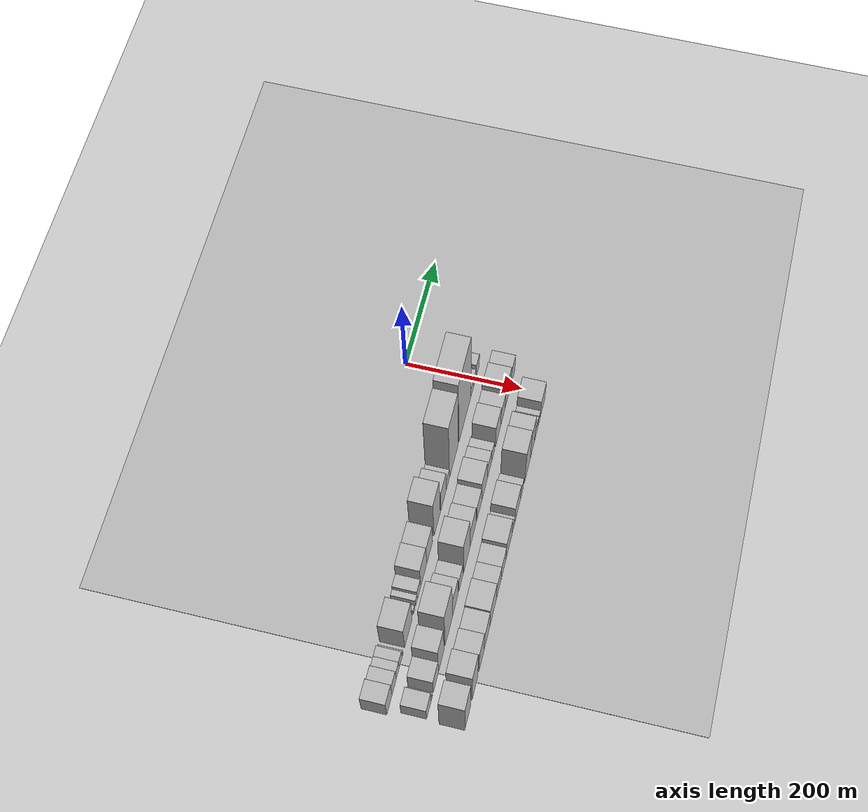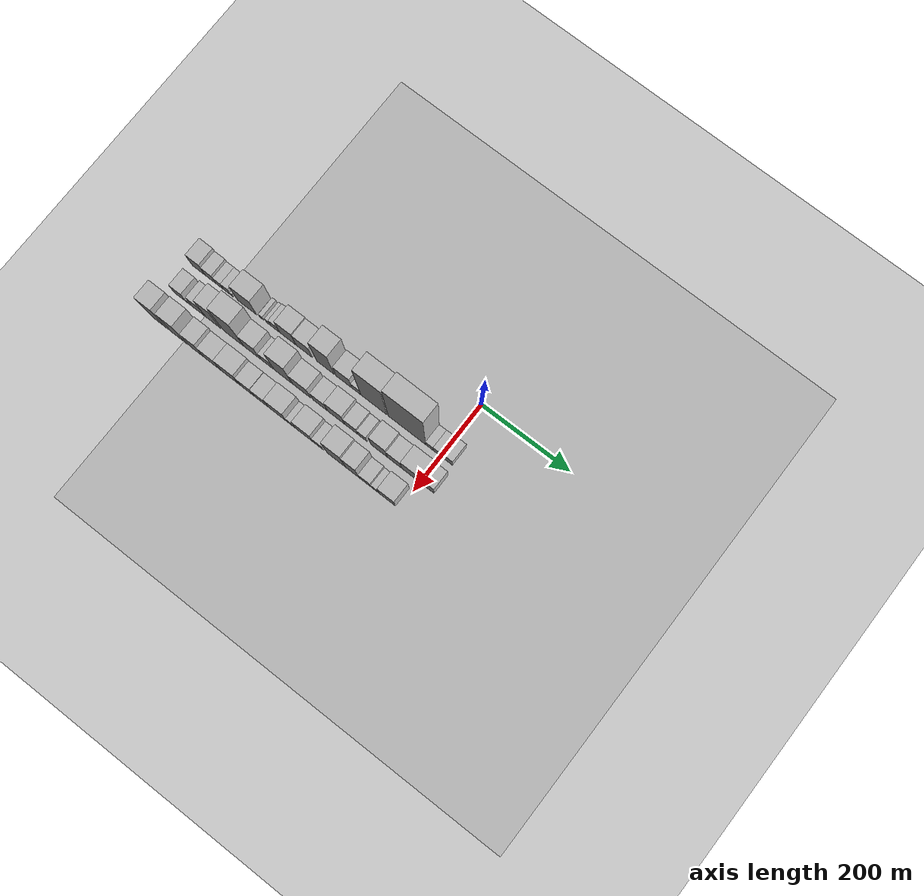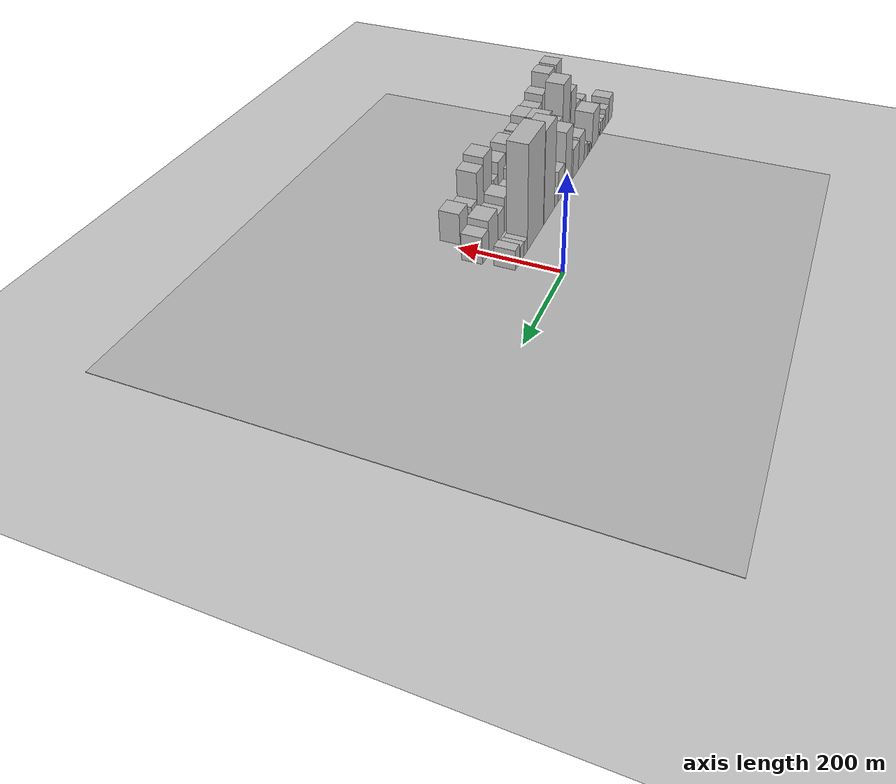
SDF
<sdf version="1.6">
 <world name="default">
  <include><name>ground_plane_1</name><uri>model://HANNAS_ground_plane</uri></include>
  <include>
   <name>ground_plane_2</name>
   <uri>model://HANNAS_ground_plane</uri>
   <pose>100 0 0  0 0 0</pose>
  </include>
  <model name="building_1">
   <static>1</static>
   <pose>100.0000 -564.3469 0 0.000000 0.000000 0.000000</pose>
   <link name="link">
    <pose>0 0 30.00 0 0 0</pose>
    <collision name="collision"><geometry><box><size>40.0000 31.3062 60.0000</size></box></geometry></collision>
    <visual name="visual">
     <cast_shadows>0</cast_shadows>
     <geometry><box><size>40.0000 31.3062 60.0000</size></box></geometry>
     <material>
      <script>
       <uri>model://HANNAS_wall/materials/scripts</uri>
       <uri>model://HANNAS_wall/materials/textures</uri>
       <name>vrc/HANNAS_wall</name>
      </script>
     </material>
    </visual>
   </link>
  </model>
  <model name="building_2">
   <static>1</static>
   <pose>100.0000 -536.2208 0 0.000000 0.000000 0.000000</pose>
   <link name="link">
    <pose>0 0 22.50 0 0 0</pose>
    <collision name="collision"><geometry><box><size>40.0000 24.9461 45.0000</size></box></geometry></collision>
    <visual name="visual">
     <cast_shadows>0</cast_shadows>
     <geometry><box><size>40.0000 24.9461 45.0000</size></box></geometry>
     <material>
      <script>
       <uri>model://HANNAS_wall/materials/scripts</uri>
       <uri>model://HANNAS_wall/materials/textures</uri>
       <name>vrc/HANNAS_wall</name>
      </script>
     </material>
    </visual>
   </link>
  </model>
  <model name="building_3">
   <static>1</static>
   <pose>100.0000 -514.7291 0 0.000000 0.000000 0.000000</pose>
   <link name="link">
    <pose>0 0 16.50 0 0 0</pose>
    <collision name="collision"><geometry><box><size>40.0000 18.0373 33.0000</size></box></geometry></collision>
    <visual name="visual">
     <cast_shadows>0</cast_shadows>
     <geometry><box><size>40.0000 18.0373 33.0000</size></box></geometry>
     <material>
      <script>
       <uri>model://HANNAS_wall/materials/scripts</uri>
       <uri>model://HANNAS_wall/materials/textures</uri>
       <name>vrc/HANNAS_wall</name>
      </script>
     </material>
    </visual>
   </link>
  </model>
  <model name="building_4">
   <static>1</static>
   <pose>100.0000 -497.1526 0 0.000000 0.000000 0.000000</pose>
   <link name="link">
    <pose>0 0 16.50 0 0 0</pose>
    <collision name="collision"><geometry><box><size>40.0000 17.1158 33.0000</size></box></geometry></collision>
    <visual name="visual">
     <cast_shadows>0</cast_shadows>
     <geometry><box><size>40.0000 17.1158 33.0000</size></box></geometry>
     <material>
      <script>
       <uri>model://HANNAS_wall/materials/scripts</uri>
       <uri>model://HANNAS_wall/materials/textures</uri>
       <name>vrc/HANNAS_wall</name>
      </script>
     </material>
    </visual>
   </link>
  </model>
  <model name="building_5">
   <static>1</static>
   <pose>100.0000 -485.1934 0 0.000000 0.000000 0.000000</pose>
   <link name="link">
    <pose>0 0 7.50 0 0 0</pose>
    <collision name="collision"><geometry><box><size>40.0000 6.8025 15.0000</size></box></geometry></collision>
    <visual name="visual">
     <cast_shadows>0</cast_shadows>
     <geometry><box><size>40.0000 6.8025 15.0000</size></box></geometry>
     <material>
      <script>
       <uri>model://HANNAS_wall/materials/scripts</uri>
       <uri>model://HANNAS_wall/materials/textures</uri>
       <name>vrc/HANNAS_wall</name>
      </script>
     </material>
    </visual>
   </link>
  </model>
  <model name="building_6">
   <static>1</static>
   <pose>100.0000 -449.6014 0 0.000000 0.000000 0.000000</pose>
   <link name="link">
    <pose>0 0 42.00 0 0 0</pose>
    <collision name="collision"><geometry><box><size>40.0000 46.3815 84.0000</size></box></geometry></collision>
    <visual name="visual">
     <cast_shadows>0</cast_shadows>
     <geometry><box><size>40.0000 46.3815 84.0000</size></box></geometry>
     <material>
      <script>
       <uri>model://HANNAS_wall/materials/scripts</uri>
       <uri>model://HANNAS_wall/materials/textures</uri>
       <name>vrc/HANNAS_wall</name>
      </script>
     </material>
    </visual>
   </link>
  </model>
  <model name="building_7">
   <static>1</static>
   <pose>100.0000 -414.8630 0 0.000000 0.000000 0.000000</pose>
   <link name="link">
    <pose>0 0 10.50 0 0 0</pose>
    <collision name="collision"><geometry><box><size>40.0000 9.0954 21.0000</size></box></geometry></collision>
    <visual name="visual">
     <cast_shadows>0</cast_shadows>
     <geometry><box><size>40.0000 9.0954 21.0000</size></box></geometry>
     <material>
      <script>
       <uri>model://HANNAS_wall/materials/scripts</uri>
       <uri>model://HANNAS_wall/materials/textures</uri>
       <name>vrc/HANNAS_wall</name>
      </script>
     </material>
    </visual>
   </link>
  </model>
  <model name="building_8">
   <static>1</static>
   <pose>100.0000 -399.0628 0 0.000000 0.000000 0.000000</pose>
   <link name="link">
    <pose>0 0 12.00 0 0 0</pose>
    <collision name="collision"><geometry><box><size>40.0000 10.5049 24.0000</size></box></geometry></collision>
    <visual name="visual">
     <cast_shadows>0</cast_shadows>
     <geometry><box><size>40.0000 10.5049 24.0000</size></box></geometry>
     <material>
      <script>
       <uri>model://HANNAS_wall/materials/scripts</uri>
       <uri>model://HANNAS_wall/materials/textures</uri>
       <name>vrc/HANNAS_wall</name>
      </script>
     </material>
    </visual>
   </link>
  </model>
  <model name="building_9">
   <static>1</static>
   <pose>100.0000 -383.0492 0 0.000000 0.000000 0.000000</pose>
   <link name="link">
    <pose>0 0 18.00 0 0 0</pose>
    <collision name="collision"><geometry><box><size>40.0000 21.5223 36.0000</size></box></geometry></collision>
    <visual name="visual">
     <cast_shadows>0</cast_shadows>
     <geometry><box><size>40.0000 21.5223 36.0000</size></box></geometry>
     <material>
      <script>
       <uri>model://HANNAS_wall/materials/scripts</uri>
       <uri>model://HANNAS_wall/materials/textures</uri>
       <name>vrc/HANNAS_wall</name>
      </script>
     </material>
    </visual>
   </link>
  </model>
  <model name="building_10">
   <static>1</static>
   <pose>100.0000 -352.9739 0 0.000000 0.000000 0.000000</pose>
   <link name="link">
    <pose>0 0 37.50 0 0 0</pose>
    <collision name="collision"><geometry><box><size>40.0000 38.6283 75.0000</size></box></geometry></collision>
    <visual name="visual">
     <cast_shadows>0</cast_shadows>
     <geometry><box><size>40.0000 38.6283 75.0000</size></box></geometry>
     <material>
      <script>
       <uri>model://HANNAS_wall/materials/scripts</uri>
       <uri>model://HANNAS_wall/materials/textures</uri>
       <name>vrc/HANNAS_wall</name>
      </script>
     </material>
    </visual>
   </link>
  </model>
  <model name="building_11">
   <static>1</static>
   <pose>100.0000 -314.8641 0 0.000000 0.000000 0.000000</pose>
   <link name="link">
    <pose>0 0 34.50 0 0 0</pose>
    <collision name="collision"><geometry><box><size>40.0000 37.5913 69.0000</size></box></geometry></collision>
    <visual name="visual">
     <cast_shadows>0</cast_shadows>
     <geometry><box><size>40.0000 37.5913 69.0000</size></box></geometry>
     <material>
      <script>
       <uri>model://HANNAS_wall/materials/scripts</uri>
       <uri>model://HANNAS_wall/materials/textures</uri>
       <name>vrc/HANNAS_wall</name>
      </script>
     </material>
    </visual>
   </link>
  </model>
  <model name="building_12">
   <static>1</static>
   <pose>100.0000 -265.6356 0 0.000000 0.000000 0.000000</pose>
   <link name="link">
    <pose>0 0 66.00 0 0 0</pose>
    <collision name="collision"><geometry><box><size>40.0000 40.8657 132.0000</size></box></geometry></collision>
    <visual name="visual">
     <cast_shadows>0</cast_shadows>
     <geometry><box><size>40.0000 40.8657 132.0000</size></box></geometry>
     <material>
      <script>
       <uri>model://HANNAS_wall/materials/scripts</uri>
       <uri>model://HANNAS_wall/materials/textures</uri>
       <name>vrc/HANNAS_wall</name>
      </script>
     </material>
    </visual>
   </link>
  </model>
  <model name="building_13">
   <static>1</static>
   <pose>100.0000 -222.7136 0 0.000000 0.000000 0.000000</pose>
   <link name="link">
    <pose>0 0 34.50 0 0 0</pose>
    <collision name="collision"><geometry><box><size>40.0000 36.9784 69.0000</size></box></geometry></collision>
    <visual name="visual">
     <cast_shadows>0</cast_shadows>
     <geometry><box><size>40.0000 36.9784 69.0000</size></box></geometry>
     <material>
      <script>
       <uri>model://HANNAS_wall/materials/scripts</uri>
       <uri>model://HANNAS_wall/materials/textures</uri>
       <name>vrc/HANNAS_wall</name>
      </script>
     </material>
    </visual>
   </link>
  </model>
  <model name="building_14">
   <static>1</static>
   <pose>100.0000 -193.8924 0 0.000000 0.000000 0.000000</pose>
   <link name="link">
    <pose>0 0 18.00 0 0 0</pose>
    <collision name="collision"><geometry><box><size>40.0000 20.6640 36.0000</size></box></geometry></collision>
    <visual name="visual">
     <cast_shadows>0</cast_shadows>
     <geometry><box><size>40.0000 20.6640 36.0000</size></box></geometry>
     <material>
      <script>
       <uri>model://HANNAS_wall/materials/scripts</uri>
       <uri>model://HANNAS_wall/materials/textures</uri>
       <name>vrc/HANNAS_wall</name>
      </script>
     </material>
    </visual>
   </link>
  </model>
  <model name="building_15">
   <static>1</static>
   <pose>100.0000 -153.4347 0 0.000000 0.000000 0.000000</pose>
   <link name="link">
    <pose>0 0 99.00 0 0 0</pose>
    <collision name="collision"><geometry><box><size>40.0000 60.2513 198.0000</size></box></geometry></collision>
    <visual name="visual">
     <cast_shadows>0</cast_shadows>
     <geometry><box><size>40.0000 60.2513 198.0000</size></box></geometry>
     <material>
      <script>
       <uri>model://HANNAS_wall/materials/scripts</uri>
       <uri>model://HANNAS_wall/materials/textures</uri>
       <name>vrc/HANNAS_wall</name>
      </script>
     </material>
    </visual>
   </link>
  </model>
  <model name="building_16">
   <static>1</static>
   <pose>100.0000 -77.7724 0 0.000000 0.000000 0.000000</pose>
   <link name="link">
    <pose>0 0 109.50 0 0 0</pose>
    <collision name="collision"><geometry><box><size>40.0000 85.0735 219.0000</size></box></geometry></collision>
    <visual name="visual">
     <cast_shadows>0</cast_shadows>
     <geometry><box><size>40.0000 85.0735 219.0000</size></box></geometry>
     <material>
      <script>
       <uri>model://HANNAS_wall/materials/scripts</uri>
       <uri>model://HANNAS_wall/materials/textures</uri>
       <name>vrc/HANNAS_wall</name>
      </script>
     </material>
    </visual>
   </link>
  </model>
  <model name="building_17">
   <static>1</static>
   <pose>100.0000 -26.6533 0 0.000000 0.000000 0.000000</pose>
   <link name="link">
    <pose>0 0 15.00 0 0 0</pose>
    <collision name="collision"><geometry><box><size>40.0000 17.1646 30.0000</size></box></geometry></collision>
    <visual name="visual">
     <cast_shadows>0</cast_shadows>
     <geometry><box><size>40.0000 17.1646 30.0000</size></box></geometry>
     <material>
      <script>
       <uri>model://HANNAS_wall/materials/scripts</uri>
       <uri>model://HANNAS_wall/materials/textures</uri>
       <name>vrc/HANNAS_wall</name>
      </script>
     </material>
    </visual>
   </link>
  </model>
  <model name="building_18">
   <static>1</static>
   <pose>100.0000 -8.3352 0 0.000000 0.000000 0.000000</pose>
   <link name="link">
    <pose>0 0 16.50 0 0 0</pose>
    <collision name="collision"><geometry><box><size>40.0000 19.4717 33.0000</size></box></geometry></collision>
    <visual name="visual">
     <cast_shadows>0</cast_shadows>
     <geometry><box><size>40.0000 19.4717 33.0000</size></box></geometry>
     <material>
      <script>
       <uri>model://HANNAS_wall/materials/scripts</uri>
       <uri>model://HANNAS_wall/materials/textures</uri>
       <name>vrc/HANNAS_wall</name>
      </script>
     </material>
    </visual>
   </link>
  </model>
  <model name="building_19">
   <static>1</static>
   <pose>100.0000 15.1013 0 0.000000 0.000000 0.000000</pose>
   <link name="link">
    <pose>0 0 21.00 0 0 0</pose>
    <collision name="collision"><geometry><box><size>40.0000 21.4013 42.0000</size></box></geometry></collision>
    <visual name="visual">
     <cast_shadows>0</cast_shadows>
     <geometry><box><size>40.0000 21.4013 42.0000</size></box></geometry>
     <material>
      <script>
       <uri>model://HANNAS_wall/materials/scripts</uri>
       <uri>model://HANNAS_wall/materials/textures</uri>
       <name>vrc/HANNAS_wall</name>
      </script>
     </material>
    </visual>
   </link>
  </model>
  <model name="building_41">
   <static>1</static>
   <pose>160.0000 -557.8670 0 0.000000 0.000000 0.000000</pose>
   <link name="link">
    <pose>0 0 24.00 0 0 0</pose>
    <collision name="collision"><geometry><box><size>40.0000 28.2659 48.0000</size></box></geometry></collision>
    <visual name="visual">
     <cast_shadows>0</cast_shadows>
     <geometry><box><size>40.0000 28.2659 48.0000</size></box></geometry>
     <material>
      <script>
       <uri>model://HANNAS_wall/materials/scripts</uri>
       <uri>model://HANNAS_wall/materials/textures</uri>
       <name>vrc/HANNAS_wall</name>
      </script>
     </material>
    </visual>
   </link>
  </model>
  <model name="building_42">
   <static>1</static>
   <pose>160.0000 -539.5382 0 0.000000 0.000000 0.000000</pose>
   <link name="link">
    <pose>0 0 9.00 0 0 0</pose>
    <collision name="collision"><geometry><box><size>40.0000 8.3918 18.0000</size></box></geometry></collision>
    <visual name="visual">
     <cast_shadows>0</cast_shadows>
     <geometry><box><size>40.0000 8.3918 18.0000</size></box></geometry>
     <material>
      <script>
       <uri>model://HANNAS_wall/materials/scripts</uri>
       <uri>model://HANNAS_wall/materials/textures</uri>
       <name>vrc/HANNAS_wall</name>
      </script>
     </material>
    </visual>
   </link>
  </model>
  <model name="building_43">
   <static>1</static>
   <pose>160.0000 -514.0114 0 0.000000 0.000000 0.000000</pose>
   <link name="link">
    <pose>0 0 28.50 0 0 0</pose>
    <collision name="collision"><geometry><box><size>40.0000 32.6617 57.0000</size></box></geometry></collision>
    <visual name="visual">
     <cast_shadows>0</cast_shadows>
     <geometry><box><size>40.0000 32.6617 57.0000</size></box></geometry>
     <material>
      <script>
       <uri>model://HANNAS_wall/materials/scripts</uri>
       <uri>model://HANNAS_wall/materials/textures</uri>
       <name>vrc/HANNAS_wall</name>
      </script>
     </material>
    </visual>
   </link>
  </model>
  <model name="building_44">
   <static>1</static>
   <pose>160.0000 -479.9670 0 0.000000 0.000000 0.000000</pose>
   <link name="link">
    <pose>0 0 52.50 0 0 0</pose>
    <collision name="collision"><geometry><box><size>40.0000 35.4271 105.0000</size></box></geometry></collision>
    <visual name="visual">
     <cast_shadows>0</cast_shadows>
     <geometry><box><size>40.0000 35.4271 105.0000</size></box></geometry>
     <material>
      <script>
       <uri>model://HANNAS_wall/materials/scripts</uri>
       <uri>model://HANNAS_wall/materials/textures</uri>
       <name>vrc/HANNAS_wall</name>
      </script>
     </material>
    </visual>
   </link>
  </model>
  <model name="building_45">
   <static>1</static>
   <pose>160.0000 -431.1962 0 0.000000 0.000000 0.000000</pose>
   <link name="link">
    <pose>0 0 73.50 0 0 0</pose>
    <collision name="collision"><geometry><box><size>40.0000 48.1146 147.0000</size></box></geometry></collision>
    <visual name="visual">
     <cast_shadows>0</cast_shadows>
     <geometry><box><size>40.0000 48.1146 147.0000</size></box></geometry>
     <material>
      <script>
       <uri>model://HANNAS_wall/materials/scripts</uri>
       <uri>model://HANNAS_wall/materials/textures</uri>
       <name>vrc/HANNAS_wall</name>
      </script>
     </material>
    </visual>
   </link>
  </model>
  <model name="building_46">
   <static>1</static>
   <pose>160.0000 -388.1790 0 0.000000 0.000000 0.000000</pose>
   <link name="link">
    <pose>0 0 37.50 0 0 0</pose>
    <collision name="collision"><geometry><box><size>40.0000 37.9197 75.0000</size></box></geometry></collision>
    <visual name="visual">
     <cast_shadows>0</cast_shadows>
     <geometry><box><size>40.0000 37.9197 75.0000</size></box></geometry>
     <material>
      <script>
       <uri>model://HANNAS_wall/materials/scripts</uri>
       <uri>model://HANNAS_wall/materials/textures</uri>
       <name>vrc/HANNAS_wall</name>
      </script>
     </material>
    </visual>
   </link>
  </model>
  <model name="building_47">
   <static>1</static>
   <pose>160.0000 -352.4566 0 0.000000 0.000000 0.000000</pose>
   <link name="link">
    <pose>0 0 24.00 0 0 0</pose>
    <collision name="collision"><geometry><box><size>40.0000 27.5251 48.0000</size></box></geometry></collision>
    <visual name="visual">
     <cast_shadows>0</cast_shadows>
     <geometry><box><size>40.0000 27.5251 48.0000</size></box></geometry>
     <material>
      <script>
       <uri>model://HANNAS_wall/materials/scripts</uri>
       <uri>model://HANNAS_wall/materials/textures</uri>
       <name>vrc/HANNAS_wall</name>
      </script>
     </material>
    </visual>
   </link>
  </model>
  <model name="building_48">
   <static>1</static>
   <pose>160.0000 -314.3407 0 0.000000 0.000000 0.000000</pose>
   <link name="link">
    <pose>0 0 61.50 0 0 0</pose>
    <collision name="collision"><geometry><box><size>40.0000 42.7068 123.0000</size></box></geometry></collision>
    <visual name="visual">
     <cast_shadows>0</cast_shadows>
     <geometry><box><size>40.0000 42.7068 123.0000</size></box></geometry>
     <material>
      <script>
       <uri>model://HANNAS_wall/materials/scripts</uri>
       <uri>model://HANNAS_wall/materials/textures</uri>
       <name>vrc/HANNAS_wall</name>
      </script>
     </material>
    </visual>
   </link>
  </model>
  <model name="building_49">
   <static>1</static>
   <pose>160.0000 -271.8601 0 0.000000 0.000000 0.000000</pose>
   <link name="link">
    <pose>0 0 36.00 0 0 0</pose>
    <collision name="collision"><geometry><box><size>40.0000 42.2543 72.0000</size></box></geometry></collision>
    <visual name="visual">
     <cast_shadows>0</cast_shadows>
     <geometry><box><size>40.0000 42.2543 72.0000</size></box></geometry>
     <material>
      <script>
       <uri>model://HANNAS_wall/materials/scripts</uri>
       <uri>model://HANNAS_wall/materials/textures</uri>
       <name>vrc/HANNAS_wall</name>
      </script>
     </material>
    </visual>
   </link>
  </model>
  <model name="building_50">
   <static>1</static>
   <pose>160.0000 -228.7493 0 0.000000 0.000000 0.000000</pose>
   <link name="link">
    <pose>0 0 28.50 0 0 0</pose>
    <collision name="collision"><geometry><box><size>40.0000 33.9673 57.0000</size></box></geometry></collision>
    <visual name="visual">
     <cast_shadows>0</cast_shadows>
     <geometry><box><size>40.0000 33.9673 57.0000</size></box></geometry>
     <material>
      <script>
       <uri>model://HANNAS_wall/materials/scripts</uri>
       <uri>model://HANNAS_wall/materials/textures</uri>
       <name>vrc/HANNAS_wall</name>
      </script>
     </material>
    </visual>
   </link>
  </model>
  <model name="building_51">
   <static>1</static>
   <pose>160.0000 -191.9528 0 0.000000 0.000000 0.000000</pose>
   <link name="link">
    <pose>0 0 37.50 0 0 0</pose>
    <collision name="collision"><geometry><box><size>40.0000 39.6259 75.0000</size></box></geometry></collision>
    <visual name="visual">
     <cast_shadows>0</cast_shadows>
     <geometry><box><size>40.0000 39.6259 75.0000</size></box></geometry>
     <material>
      <script>
       <uri>model://HANNAS_wall/materials/scripts</uri>
       <uri>model://HANNAS_wall/materials/textures</uri>
       <name>vrc/HANNAS_wall</name>
      </script>
     </material>
    </visual>
   </link>
  </model>
  <model name="building_52">
   <static>1</static>
   <pose>160.0000 -157.3839 0 0.000000 0.000000 0.000000</pose>
   <link name="link">
    <pose>0 0 25.50 0 0 0</pose>
    <collision name="collision"><geometry><box><size>40.0000 29.5119 51.0000</size></box></geometry></collision>
    <visual name="visual">
     <cast_shadows>0</cast_shadows>
     <geometry><box><size>40.0000 29.5119 51.0000</size></box></geometry>
     <material>
      <script>
       <uri>model://HANNAS_wall/materials/scripts</uri>
       <uri>model://HANNAS_wall/materials/textures</uri>
       <name>vrc/HANNAS_wall</name>
      </script>
     </material>
    </visual>
   </link>
  </model>
  <model name="building_53">
   <static>1</static>
   <pose>160.0000 -132.2535 0 0.000000 0.000000 0.000000</pose>
   <link name="link">
    <pose>0 0 19.50 0 0 0</pose>
    <collision name="collision"><geometry><box><size>40.0000 20.7489 39.0000</size></box></geometry></collision>
    <visual name="visual">
     <cast_shadows>0</cast_shadows>
     <geometry><box><size>40.0000 20.7489 39.0000</size></box></geometry>
     <material>
      <script>
       <uri>model://HANNAS_wall/materials/scripts</uri>
       <uri>model://HANNAS_wall/materials/textures</uri>
       <name>vrc/HANNAS_wall</name>
      </script>
     </material>
    </visual>
   </link>
  </model>
  <model name="building_54">
   <static>1</static>
   <pose>160.0000 -94.1200 0 0.000000 0.000000 0.000000</pose>
   <link name="link">
    <pose>0 0 37.50 0 0 0</pose>
    <collision name="collision"><geometry><box><size>40.0000 37.5179 75.0000</size></box></geometry></collision>
    <visual name="visual">
     <cast_shadows>0</cast_shadows>
     <geometry><box><size>40.0000 37.5179 75.0000</size></box></geometry>
     <material>
      <script>
       <uri>model://HANNAS_wall/materials/scripts</uri>
       <uri>model://HANNAS_wall/materials/textures</uri>
       <name>vrc/HANNAS_wall</name>
      </script>
     </material>
    </visual>
   </link>
  </model>
  <model name="building_55">
   <static>1</static>
   <pose>160.0000 -59.0901 0 0.000000 0.000000 0.000000</pose>
   <link name="link">
    <pose>0 0 28.50 0 0 0</pose>
    <collision name="collision"><geometry><box><size>40.0000 32.5419 57.0000</size></box></geometry></collision>
    <visual name="visual">
     <cast_shadows>0</cast_shadows>
     <geometry><box><size>40.0000 32.5419 57.0000</size></box></geometry>
     <material>
      <script>
       <uri>model://HANNAS_wall/materials/scripts</uri>
       <uri>model://HANNAS_wall/materials/textures</uri>
       <name>vrc/HANNAS_wall</name>
      </script>
     </material>
    </visual>
   </link>
  </model>
  <model name="building_56">
   <static>1</static>
   <pose>160.0000 -21.2460 0 0.000000 0.000000 0.000000</pose>
   <link name="link">
    <pose>0 0 36.00 0 0 0</pose>
    <collision name="collision"><geometry><box><size>40.0000 43.1464 72.0000</size></box></geometry></collision>
    <visual name="visual">
     <cast_shadows>0</cast_shadows>
     <geometry><box><size>40.0000 43.1464 72.0000</size></box></geometry>
     <material>
      <script>
       <uri>model://HANNAS_wall/materials/scripts</uri>
       <uri>model://HANNAS_wall/materials/textures</uri>
       <name>vrc/HANNAS_wall</name>
      </script>
     </material>
    </visual>
   </link>
  </model>
  <model name="building_57">
   <static>1</static>
   <pose>160.0000 15.5458 0 0.000000 0.000000 0.000000</pose>
   <link name="link">
    <pose>0 0 28.50 0 0 0</pose>
    <collision name="collision"><geometry><box><size>40.0000 30.4371 57.0000</size></box></geometry></collision>
    <visual name="visual">
     <cast_shadows>0</cast_shadows>
     <geometry><box><size>40.0000 30.4371 57.0000</size></box></geometry>
     <material>
      <script>
       <uri>model://HANNAS_wall/materials/scripts</uri>
       <uri>model://HANNAS_wall/materials/textures</uri>
       <name>vrc/HANNAS_wall</name>
      </script>
     </material>
    </visual>
   </link>
  </model>
  <model name="building_72">
   <static>1</static>
   <pose>220.0000 -556.3811 0 0.000000 0.000000 0.000000</pose>
   <link name="link">
    <pose>0 0 61.50 0 0 0</pose>
    <collision name="collision"><geometry><box><size>40.0000 37.2379 123.0000</size></box></geometry></collision>
    <visual name="visual">
     <cast_shadows>0</cast_shadows>
     <geometry><box><size>40.0000 37.2379 123.0000</size></box></geometry>
     <material>
      <script>
       <uri>model://HANNAS_wall/materials/scripts</uri>
       <uri>model://HANNAS_wall/materials/textures</uri>
       <name>vrc/HANNAS_wall</name>
      </script>
     </material>
    </visual>
   </link>
  </model>
  <model name="building_73">
   <static>1</static>
   <pose>220.0000 -509.0578 0 0.000000 0.000000 0.000000</pose>
   <link name="link">
    <pose>0 0 61.50 0 0 0</pose>
    <collision name="collision"><geometry><box><size>40.0000 37.4086 123.0000</size></box></geometry></collision>
    <visual name="visual">
     <cast_shadows>0</cast_shadows>
     <geometry><box><size>40.0000 37.4086 123.0000</size></box></geometry>
     <material>
      <script>
       <uri>model://HANNAS_wall/materials/scripts</uri>
       <uri>model://HANNAS_wall/materials/textures</uri>
       <name>vrc/HANNAS_wall</name>
      </script>
     </material>
    </visual>
   </link>
  </model>
  <model name="building_74">
   <static>1</static>
   <pose>220.0000 -465.8394 0 0.000000 0.000000 0.000000</pose>
   <link name="link">
    <pose>0 0 46.50 0 0 0</pose>
    <collision name="collision"><geometry><box><size>40.0000 33.0282 93.0000</size></box></geometry></collision>
    <visual name="visual">
     <cast_shadows>0</cast_shadows>
     <geometry><box><size>40.0000 33.0282 93.0000</size></box></geometry>
     <material>
      <script>
       <uri>model://HANNAS_wall/materials/scripts</uri>
       <uri>model://HANNAS_wall/materials/textures</uri>
       <name>vrc/HANNAS_wall</name>
      </script>
     </material>
    </visual>
   </link>
  </model>
  <model name="building_75">
   <static>1</static>
   <pose>220.0000 -429.7890 0 0.000000 0.000000 0.000000</pose>
   <link name="link">
    <pose>0 0 37.50 0 0 0</pose>
    <collision name="collision"><geometry><box><size>40.0000 39.0726 75.0000</size></box></geometry></collision>
    <visual name="visual">
     <cast_shadows>0</cast_shadows>
     <geometry><box><size>40.0000 39.0726 75.0000</size></box></geometry>
     <material>
      <script>
       <uri>model://HANNAS_wall/materials/scripts</uri>
       <uri>model://HANNAS_wall/materials/textures</uri>
       <name>vrc/HANNAS_wall</name>
      </script>
     </material>
    </visual>
   </link>
  </model>
  <model name="building_76">
   <static>1</static>
   <pose>220.0000 -387.8769 0 0.000000 0.000000 0.000000</pose>
   <link name="link">
    <pose>0 0 40.50 0 0 0</pose>
    <collision name="collision"><geometry><box><size>40.0000 44.7518 81.0000</size></box></geometry></collision>
    <visual name="visual">
     <cast_shadows>0</cast_shadows>
     <geometry><box><size>40.0000 44.7518 81.0000</size></box></geometry>
     <material>
      <script>
       <uri>model://HANNAS_wall/materials/scripts</uri>
       <uri>model://HANNAS_wall/materials/textures</uri>
       <name>vrc/HANNAS_wall</name>
      </script>
     </material>
    </visual>
   </link>
  </model>
  <model name="building_77">
   <static>1</static>
   <pose>220.0000 -348.8510 0 0.000000 0.000000 0.000000</pose>
   <link name="link">
    <pose>0 0 31.50 0 0 0</pose>
    <collision name="collision"><geometry><box><size>40.0000 33.2999 63.0000</size></box></geometry></collision>
    <visual name="visual">
     <cast_shadows>0</cast_shadows>
     <geometry><box><size>40.0000 33.2999 63.0000</size></box></geometry>
     <material>
      <script>
       <uri>model://HANNAS_wall/materials/scripts</uri>
       <uri>model://HANNAS_wall/materials/textures</uri>
       <name>vrc/HANNAS_wall</name>
      </script>
     </material>
    </visual>
   </link>
  </model>
  <model name="building_78">
   <static>1</static>
   <pose>220.0000 -315.4306 0 0.000000 0.000000 0.000000</pose>
   <link name="link">
    <pose>0 0 30.00 0 0 0</pose>
    <collision name="collision"><geometry><box><size>40.0000 33.5409 60.0000</size></box></geometry></collision>
    <visual name="visual">
     <cast_shadows>0</cast_shadows>
     <geometry><box><size>40.0000 33.5409 60.0000</size></box></geometry>
     <material>
      <script>
       <uri>model://HANNAS_wall/materials/scripts</uri>
       <uri>model://HANNAS_wall/materials/textures</uri>
       <name>vrc/HANNAS_wall</name>
      </script>
     </material>
    </visual>
   </link>
  </model>
  <model name="building_79">
   <static>1</static>
   <pose>220.0000 -277.4956 0 0.000000 0.000000 0.000000</pose>
   <link name="link">
    <pose>0 0 37.50 0 0 0</pose>
    <collision name="collision"><geometry><box><size>40.0000 42.3291 75.0000</size></box></geometry></collision>
    <visual name="visual">
     <cast_shadows>0</cast_shadows>
     <geometry><box><size>40.0000 42.3291 75.0000</size></box></geometry>
     <material>
      <script>
       <uri>model://HANNAS_wall/materials/scripts</uri>
       <uri>model://HANNAS_wall/materials/textures</uri>
       <name>vrc/HANNAS_wall</name>
      </script>
     </material>
    </visual>
   </link>
  </model>
  <model name="building_80">
   <static>1</static>
   <pose>220.0000 -246.5379 0 0.000000 0.000000 0.000000</pose>
   <link name="link">
    <pose>0 0 18.00 0 0 0</pose>
    <collision name="collision"><geometry><box><size>40.0000 19.5864 36.0000</size></box></geometry></collision>
    <visual name="visual">
     <cast_shadows>0</cast_shadows>
     <geometry><box><size>40.0000 19.5864 36.0000</size></box></geometry>
     <material>
      <script>
       <uri>model://HANNAS_wall/materials/scripts</uri>
       <uri>model://HANNAS_wall/materials/textures</uri>
       <name>vrc/HANNAS_wall</name>
      </script>
     </material>
    </visual>
   </link>
  </model>
  <model name="building_81">
   <static>1</static>
   <pose>220.0000 -216.2953 0 0.000000 0.000000 0.000000</pose>
   <link name="link">
    <pose>0 0 34.50 0 0 0</pose>
    <collision name="collision"><geometry><box><size>40.0000 40.8987 69.0000</size></box></geometry></collision>
    <visual name="visual">
     <cast_shadows>0</cast_shadows>
     <geometry><box><size>40.0000 40.8987 69.0000</size></box></geometry>
     <material>
      <script>
       <uri>model://HANNAS_wall/materials/scripts</uri>
       <uri>model://HANNAS_wall/materials/textures</uri>
       <name>vrc/HANNAS_wall</name>
      </script>
     </material>
    </visual>
   </link>
  </model>
  <model name="building_82">
   <static>1</static>
   <pose>220.0000 -184.4032 0 0.000000 0.000000 0.000000</pose>
   <link name="link">
    <pose>0 0 21.00 0 0 0</pose>
    <collision name="collision"><geometry><box><size>40.0000 22.8855 42.0000</size></box></geometry></collision>
    <visual name="visual">
     <cast_shadows>0</cast_shadows>
     <geometry><box><size>40.0000 22.8855 42.0000</size></box></geometry>
     <material>
      <script>
       <uri>model://HANNAS_wall/materials/scripts</uri>
       <uri>model://HANNAS_wall/materials/textures</uri>
       <name>vrc/HANNAS_wall</name>
      </script>
     </material>
    </visual>
   </link>
  </model>
  <model name="building_83">
   <static>1</static>
   <pose>220.0000 -143.2648 0 0.000000 0.000000 0.000000</pose>
   <link name="link">
    <pose>0 0 60.00 0 0 0</pose>
    <collision name="collision"><geometry><box><size>40.0000 41.3913 120.0000</size></box></geometry></collision>
    <visual name="visual">
     <cast_shadows>0</cast_shadows>
     <geometry><box><size>40.0000 41.3913 120.0000</size></box></geometry>
     <material>
      <script>
       <uri>model://HANNAS_wall/materials/scripts</uri>
       <uri>model://HANNAS_wall/materials/textures</uri>
       <name>vrc/HANNAS_wall</name>
      </script>
     </material>
    </visual>
   </link>
  </model>
  <model name="building_84">
   <static>1</static>
   <pose>220.0000 -106.6228 0 0.000000 0.000000 0.000000</pose>
   <link name="link">
    <pose>0 0 52.50 0 0 0</pose>
    <collision name="collision"><geometry><box><size>40.0000 31.8929 105.0000</size></box></geometry></collision>
    <visual name="visual">
     <cast_shadows>0</cast_shadows>
     <geometry><box><size>40.0000 31.8929 105.0000</size></box></geometry>
     <material>
      <script>
       <uri>model://HANNAS_wall/materials/scripts</uri>
       <uri>model://HANNAS_wall/materials/textures</uri>
       <name>vrc/HANNAS_wall</name>
      </script>
     </material>
    </visual>
   </link>
  </model>
  <model name="building_85">
   <static>1</static>
   <pose>220.0000 -77.1014 0 0.000000 0.000000 0.000000</pose>
   <link name="link">
    <pose>0 0 24.00 0 0 0</pose>
    <collision name="collision"><geometry><box><size>40.0000 27.1498 48.0000</size></box></geometry></collision>
    <visual name="visual">
     <cast_shadows>0</cast_shadows>
     <geometry><box><size>40.0000 27.1498 48.0000</size></box></geometry>
     <material>
      <script>
       <uri>model://HANNAS_wall/materials/scripts</uri>
       <uri>model://HANNAS_wall/materials/textures</uri>
       <name>vrc/HANNAS_wall</name>
      </script>
     </material>
    </visual>
   </link>
  </model>
  <model name="building_86">
   <static>1</static>
   <pose>220.0000 -55.1406 0 0.000000 0.000000 0.000000</pose>
   <link name="link">
    <pose>0 0 16.50 0 0 0</pose>
    <collision name="collision"><geometry><box><size>40.0000 16.7718 33.0000</size></box></geometry></collision>
    <visual name="visual">
     <cast_shadows>0</cast_shadows>
     <geometry><box><size>40.0000 16.7718 33.0000</size></box></geometry>
     <material>
      <script>
       <uri>model://HANNAS_wall/materials/scripts</uri>
       <uri>model://HANNAS_wall/materials/textures</uri>
       <name>vrc/HANNAS_wall</name>
      </script>
     </material>
    </visual>
   </link>
  </model>
  <model name="building_87">
   <static>1</static>
   <pose>220.0000 -28.0522 0 0.000000 0.000000 0.000000</pose>
   <link name="link">
    <pose>0 0 33.00 0 0 0</pose>
    <collision name="collision"><geometry><box><size>40.0000 37.4050 66.0000</size></box></geometry></collision>
    <visual name="visual">
     <cast_shadows>0</cast_shadows>
     <geometry><box><size>40.0000 37.4050 66.0000</size></box></geometry>
     <material>
      <script>
       <uri>model://HANNAS_wall/materials/scripts</uri>
       <uri>model://HANNAS_wall/materials/textures</uri>
       <name>vrc/HANNAS_wall</name>
      </script>
     </material>
    </visual>
   </link>
  </model>
 </world>
</sdf>
